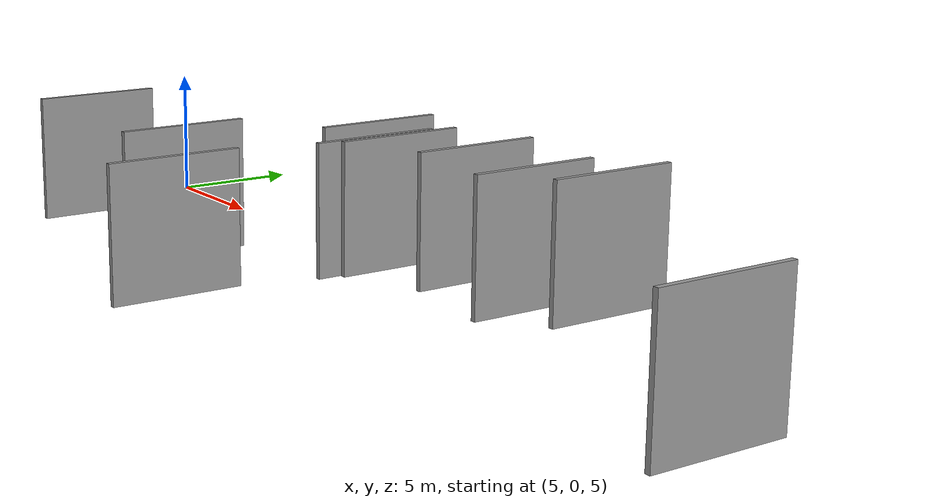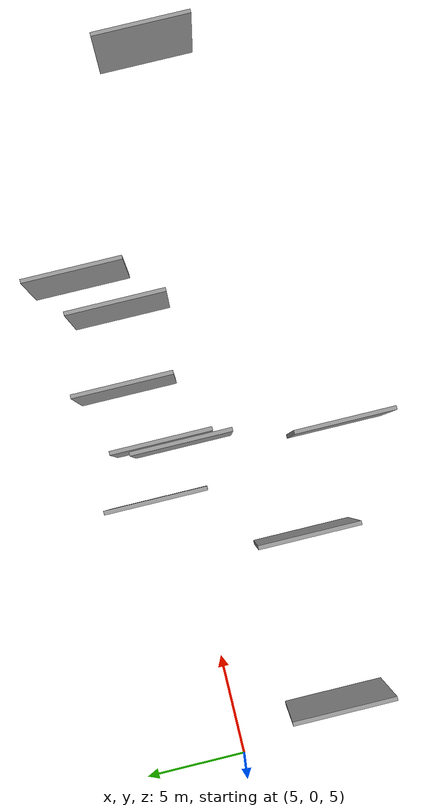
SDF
<sdf version="1.6">
 <world name="default">
  <scene>
   <sky><clouds><speed>12</speed></clouds></sky>
   <ambient>0.4 0.4 0.4 1</ambient>
   <background>0.7 0.7 0.7 1</background>
   <shadows>1</shadows>
  </scene>
  <gravity>0 0 -9.8066</gravity>
  <magnetic_field>6e-06 2.3e-05 -4.2e-05</magnetic_field>
  <physics default="0" name="default_physics" type="ode">
   <ode>
    <solver>
     <type>quick</type>
     <iters>10</iters>
     <sor>1.0</sor>
     <use_dynamic_moi_rescaling>0</use_dynamic_moi_rescaling>
    </solver>
    <constraints>
     <cfm>0</cfm>
     <erp>0.2</erp>
     <contact_max_correcting_vel>100</contact_max_correcting_vel>
     <contact_surface_layer>0.001</contact_surface_layer>
    </constraints>
   </ode>
   <max_step_size>0.004</max_step_size>
   <real_time_factor>1</real_time_factor>
   <real_time_update_rate>250</real_time_update_rate>
  </physics>
  <light name="sun" type="directional">
   <pose>0 0 10 0 0 0</pose>
   <diffuse>0.8 0.8 0.8 1</diffuse>
   <specular>0.2 0.2 0.2 1</specular>
   <attenuation>
    <range>1000</range>
    <constant>0.9</constant>
    <linear>0.01</linear>
    <quadratic>0.001</quadratic>
   </attenuation>
   <direction>-0.5 0.1 -0.9</direction>
  </light>
  <model name="grey_wall_1">
   <static>1</static>
   <pose>20.8571 -0.6477 5.0 0.000000 0.000000 1.570796</pose>
   <link name="link">
    <pose>0 0 2.50 0 0 0</pose>
    <collision name="collision"><geometry><box><size>5.00 0.2 5.00</size></box></geometry></collision>
    <visual name="visual">
     <cast_shadows>0</cast_shadows>
     <geometry><box><size>5.00 0.2 5.00</size></box></geometry>
     <material>
      <script>
       <uri>model://grey_wall/materials/scripts</uri>
       <uri>model://grey_wall/materials/textures</uri>
       <name>vrc/grey_wall</name>
      </script>
     </material>
    </visual>
   </link>
  </model>
  <model name="grey_wall_2">
   <static>1</static>
   <pose>15.1658 -5.4915 5.0 0.000000 0.000000 1.570796</pose>
   <link name="link">
    <pose>0 0 2.50 0 0 0</pose>
    <collision name="collision"><geometry><box><size>5.00 0.2 5.00</size></box></geometry></collision>
    <visual name="visual">
     <cast_shadows>0</cast_shadows>
     <geometry><box><size>5.00 0.2 5.00</size></box></geometry>
     <material>
      <script>
       <uri>model://grey_wall/materials/scripts</uri>
       <uri>model://grey_wall/materials/textures</uri>
       <name>vrc/grey_wall</name>
      </script>
     </material>
    </visual>
   </link>
  </model>
  <model name="grey_wall_3">
   <static>1</static>
   <pose>28.0772 0.8490 5.0 0.000000 0.000000 1.570796</pose>
   <link name="link">
    <pose>0 0 2.50 0 0 0</pose>
    <collision name="collision"><geometry><box><size>5.00 0.2 5.00</size></box></geometry></collision>
    <visual name="visual">
     <cast_shadows>0</cast_shadows>
     <geometry><box><size>5.00 0.2 5.00</size></box></geometry>
     <material>
      <script>
       <uri>model://grey_wall/materials/scripts</uri>
       <uri>model://grey_wall/materials/textures</uri>
       <name>vrc/grey_wall</name>
      </script>
     </material>
    </visual>
   </link>
  </model>
  <model name="grey_wall_4">
   <static>1</static>
   <pose>18.4428 1.1568 5.0 0.000000 0.000000 1.570796</pose>
   <link name="link">
    <pose>0 0 2.50 0 0 0</pose>
    <collision name="collision"><geometry><box><size>5.00 0.2 5.00</size></box></geometry></collision>
    <visual name="visual">
     <cast_shadows>0</cast_shadows>
     <geometry><box><size>5.00 0.2 5.00</size></box></geometry>
     <material>
      <script>
       <uri>model://grey_wall/materials/scripts</uri>
       <uri>model://grey_wall/materials/textures</uri>
       <name>vrc/grey_wall</name>
      </script>
     </material>
    </visual>
   </link>
  </model>
  <model name="grey_wall_5">
   <static>1</static>
   <pose>6.9097 -5.1174 5.0 0.000000 0.000000 1.570796</pose>
   <link name="link">
    <pose>0 0 2.50 0 0 0</pose>
    <collision name="collision"><geometry><box><size>5.00 0.2 5.00</size></box></geometry></collision>
    <visual name="visual">
     <cast_shadows>0</cast_shadows>
     <geometry><box><size>5.00 0.2 5.00</size></box></geometry>
     <material>
      <script>
       <uri>model://grey_wall/materials/scripts</uri>
       <uri>model://grey_wall/materials/textures</uri>
       <name>vrc/grey_wall</name>
      </script>
     </material>
    </visual>
   </link>
  </model>
  <model name="grey_wall_6">
   <static>1</static>
   <pose>24.1477 1.4378 5.0 0.000000 0.000000 1.570796</pose>
   <link name="link">
    <pose>0 0 2.50 0 0 0</pose>
    <collision name="collision"><geometry><box><size>5.00 0.2 5.00</size></box></geometry></collision>
    <visual name="visual">
     <cast_shadows>0</cast_shadows>
     <geometry><box><size>5.00 0.2 5.00</size></box></geometry>
     <material>
      <script>
       <uri>model://grey_wall/materials/scripts</uri>
       <uri>model://grey_wall/materials/textures</uri>
       <name>vrc/grey_wall</name>
      </script>
     </material>
    </visual>
   </link>
  </model>
  <model name="grey_wall_7">
   <static>1</static>
   <pose>21.1152 0.2682 5.0 0.000000 0.000000 1.570796</pose>
   <link name="link">
    <pose>0 0 2.50 0 0 0</pose>
    <collision name="collision"><geometry><box><size>5.00 0.2 5.00</size></box></geometry></collision>
    <visual name="visual">
     <cast_shadows>0</cast_shadows>
     <geometry><box><size>5.00 0.2 5.00</size></box></geometry>
     <material>
      <script>
       <uri>model://grey_wall/materials/scripts</uri>
       <uri>model://grey_wall/materials/textures</uri>
       <name>vrc/grey_wall</name>
      </script>
     </material>
    </visual>
   </link>
  </model>
  <model name="grey_wall_8">
   <static>1</static>
   <pose>20.0247 -8.4309 5.0 0.000000 0.000000 1.570796</pose>
   <link name="link">
    <pose>0 0 2.50 0 0 0</pose>
    <collision name="collision"><geometry><box><size>5.00 0.2 5.00</size></box></geometry></collision>
    <visual name="visual">
     <cast_shadows>0</cast_shadows>
     <geometry><box><size>5.00 0.2 5.00</size></box></geometry>
     <material>
      <script>
       <uri>model://grey_wall/materials/scripts</uri>
       <uri>model://grey_wall/materials/textures</uri>
       <name>vrc/grey_wall</name>
      </script>
     </material>
    </visual>
   </link>
  </model>
  <model name="grey_wall_9">
   <static>1</static>
   <pose>41.0376 -3.4882 5.0 0.000000 0.000000 1.570796</pose>
   <link name="link">
    <pose>0 0 2.50 0 0 0</pose>
    <collision name="collision"><geometry><box><size>5.00 0.2 5.00</size></box></geometry></collision>
    <visual name="visual">
     <cast_shadows>0</cast_shadows>
     <geometry><box><size>5.00 0.2 5.00</size></box></geometry>
     <material>
      <script>
       <uri>model://grey_wall/materials/scripts</uri>
       <uri>model://grey_wall/materials/textures</uri>
       <name>vrc/grey_wall</name>
      </script>
     </material>
    </visual>
   </link>
  </model>
  <model name="grey_wall_10">
   <static>1</static>
   <pose>30.0772 2.5130 5.0 0.000000 0.000000 1.570796</pose>
   <link name="link">
    <pose>0 0 2.50 0 0 0</pose>
    <collision name="collision"><geometry><box><size>5.00 0.2 5.00</size></box></geometry></collision>
    <visual name="visual">
     <cast_shadows>0</cast_shadows>
     <geometry><box><size>5.00 0.2 5.00</size></box></geometry>
     <material>
      <script>
       <uri>model://grey_wall/materials/scripts</uri>
       <uri>model://grey_wall/materials/textures</uri>
       <name>vrc/grey_wall</name>
      </script>
     </material>
    </visual>
   </link>
  </model>
 </world>
</sdf>
